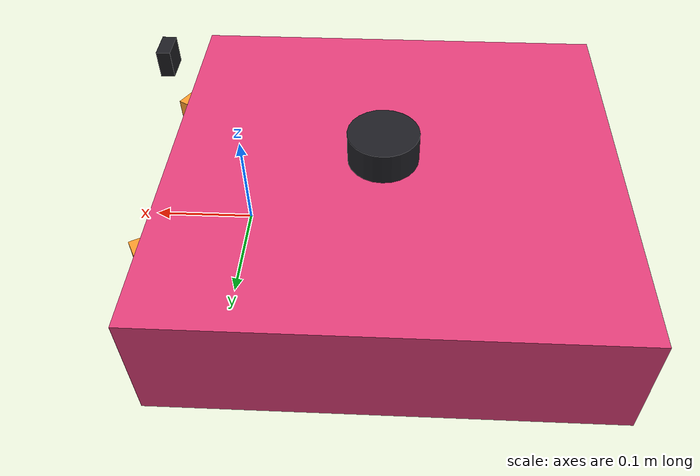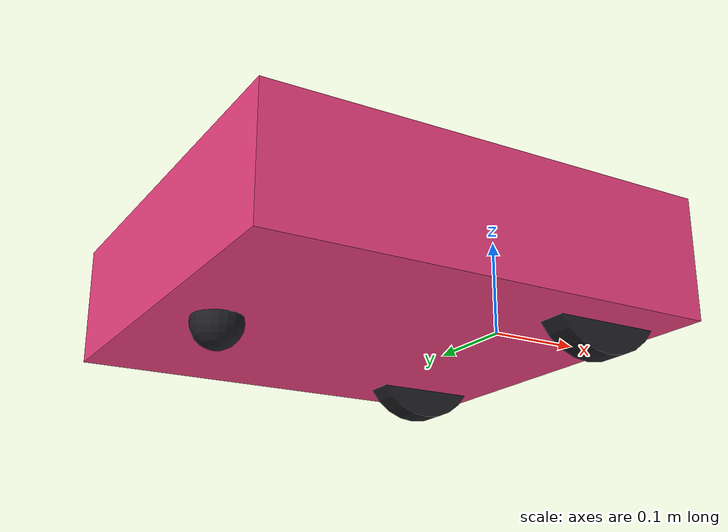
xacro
<?xml version="1.0"?>
<robot name="pathik" xmlns:xacro="http://www.ros.org/wiki/xacro">
  <xacro:arg name="laser_x" default="-0.14"/>
  <xacro:arg name="laser_y" default="0.0"/>
  <xacro:arg name="laser_z" default="0.10"/>
  <xacro:arg name="laser_yaw" default="0.0"/>
  <xacro:arg name="us_x" default="0.07"/>
  <xacro:arg name="us_y" default="0.12"/>
  <xacro:arg name="us_side_deg" default="30"/>
  <xacro:arg name="us_z" default="0.06"/>
  <xacro:arg name="imu_x" default="0.0"/>
  <xacro:arg name="imu_y" default="0.0"/>
  <xacro:arg name="imu_z" default="0.05"/>
  <xacro:arg name="camera_x" default="0.05"/>
  <xacro:arg name="camera_y" default="0.0"/>
  <xacro:arg name="camera_z" default="0.20"/>
  <xacro:arg name="footprint_front" default="0.07"/>
  <xacro:arg name="footprint_rear" default="0.37"/>
  <xacro:arg name="footprint_half_width" default="0.21"/>
  <xacro:arg name="wheel_radius" default="0.0625"/>
  <xacro:arg name="wheel_separation" default="0.30"/>

  <xacro:property name="front" value="$(arg footprint_front)"/>
  <xacro:property name="rear" value="$(arg footprint_rear)"/>
  <xacro:property name="half_w" value="$(arg footprint_half_width)"/>
  <xacro:property name="wheel_r" value="$(arg wheel_radius)"/>
  <xacro:property name="wheel_sep" value="$(arg wheel_separation)"/>
  <xacro:property name="body_h" value="0.12"/>
  <xacro:property name="caster_r" value="0.025"/>
  <xacro:property name="side" value="${$(arg us_side_deg) * pi / 180.0}"/>

  <material name="pathik_magenta"><color rgba="0.91 0.25 0.49 1"/></material>
  <material name="dark"><color rgba="0.12 0.12 0.14 1"/></material>
  <material name="orange"><color rgba="1.0 0.62 0.18 1"/></material>
  <material name="teal"><color rgba="0.18 0.89 0.78 1"/></material>

  <!-- body: the rectangle the navigator plans with (footprint_front / _rear / _half_width) -->
  <link name="base_link">
    <visual>
      <origin xyz="${(front - rear) / 2.0} 0 ${body_h / 2.0 - wheel_r + 0.03}" rpy="0 0 0"/>
      <geometry><box size="${front + rear} ${2.0 * half_w} ${body_h}"/></geometry>
      <material name="pathik_magenta"/>
    </visual>
    <collision>
      <origin xyz="${(front - rear) / 2.0} 0 ${body_h / 2.0 - wheel_r + 0.03}" rpy="0 0 0"/>
      <geometry><box size="${front + rear} ${2.0 * half_w} ${body_h}"/></geometry>
    </collision>
  </link>

  <!-- drive wheels on the axle (fixed here: no joint_states needed; odometry comes from the bridge) -->
  <link name="left_wheel_link">
    <visual>
      <origin xyz="0 0 0" rpy="${pi / 2.0} 0 0"/>
      <geometry><cylinder radius="${wheel_r}" length="0.03"/></geometry>
      <material name="dark"/>
    </visual>
  </link>
  <joint name="left_wheel_joint" type="fixed">
    <parent link="base_link"/><child link="left_wheel_link"/>
    <origin xyz="0 ${wheel_sep / 2.0} 0" rpy="0 0 0"/>
  </joint>
  <link name="right_wheel_link">
    <visual>
      <origin xyz="0 0 0" rpy="${pi / 2.0} 0 0"/>
      <geometry><cylinder radius="${wheel_r}" length="0.03"/></geometry>
      <material name="dark"/>
    </visual>
  </link>
  <joint name="right_wheel_joint" type="fixed">
    <parent link="base_link"/><child link="right_wheel_link"/>
    <origin xyz="0 ${-wheel_sep / 2.0} 0" rpy="0 0 0"/>
  </joint>

  <!-- rear caster -->
  <link name="caster_link">
    <visual>
      <geometry><sphere radius="${caster_r}"/></geometry>
      <material name="dark"/>
    </visual>
  </link>
  <joint name="caster_joint" type="fixed">
    <parent link="base_link"/><child link="caster_link"/>
    <origin xyz="${-rear + 0.06} 0 ${caster_r - wheel_r}" rpy="0 0 0"/>
  </joint>

  <!-- RPLiDAR A1 -->
  <link name="laser">
    <visual>
      <origin xyz="0 0 0" rpy="0 0 0"/>
      <geometry><cylinder radius="0.035" length="0.04"/></geometry>
      <material name="dark"/>
    </visual>
  </link>
  <joint name="laser_joint" type="fixed">
    <parent link="base_link"/><child link="laser"/>
    <origin xyz="$(arg laser_x) $(arg laser_y) $(arg laser_z)" rpy="0 0 $(arg laser_yaw)"/>
  </joint>

  <!-- Camera Module 3 Wide (camera_link: x forward like ROS; camera_optical_frame: OpenCV z forward) -->
  <link name="camera_link">
    <visual>
      <geometry><box size="0.012 0.025 0.024"/></geometry>
      <material name="dark"/>
    </visual>
  </link>
  <joint name="camera_joint" type="fixed">
    <parent link="base_link"/><child link="camera_link"/>
    <origin xyz="$(arg camera_x) $(arg camera_y) $(arg camera_z)" rpy="0 0 0"/>
  </joint>
  <link name="camera_optical_frame"/>
  <joint name="camera_optical_joint" type="fixed">
    <parent link="camera_link"/><child link="camera_optical_frame"/>
    <origin xyz="0 0 0" rpy="${-pi / 2.0} 0 ${-pi / 2.0}"/>
  </joint>

  <!-- MPU-6050 (chip X forward, Z up) -->
  <link name="imu_link">
    <visual><geometry><box size="0.02 0.016 0.003"/></geometry><material name="teal"/></visual>
  </link>
  <joint name="imu_joint" type="fixed">
    <parent link="base_link"/><child link="imu_link"/>
    <origin xyz="$(arg imu_x) $(arg imu_y) $(arg imu_z)" rpy="0 0 0"/>
  </joint>

  <!-- HC-SR04 ultrasonics: centre straight ahead, left/right angled +-us_side_deg outwards -->
  <link name="us_center">
    <visual><geometry><box size="0.015 0.045 0.02"/></geometry><material name="orange"/></visual>
  </link>
  <joint name="us_center_joint" type="fixed">
    <parent link="base_link"/><child link="us_center"/>
    <origin xyz="$(arg us_x) 0.0 $(arg us_z)" rpy="0 0 0"/>
  </joint>
  <link name="us_left">
    <visual><geometry><box size="0.015 0.045 0.02"/></geometry><material name="orange"/></visual>
  </link>
  <joint name="us_left_joint" type="fixed">
    <parent link="base_link"/><child link="us_left"/>
    <origin xyz="$(arg us_x) $(arg us_y) $(arg us_z)" rpy="0 0 ${side}"/>
  </joint>
  <link name="us_right">
    <visual><geometry><box size="0.015 0.045 0.02"/></geometry><material name="orange"/></visual>
  </link>
  <joint name="us_right_joint" type="fixed">
    <parent link="base_link"/><child link="us_right"/>
    <origin xyz="$(arg us_x) ${-$(arg us_y)} $(arg us_z)" rpy="0 0 ${-side}"/>
  </joint>
</robot>
